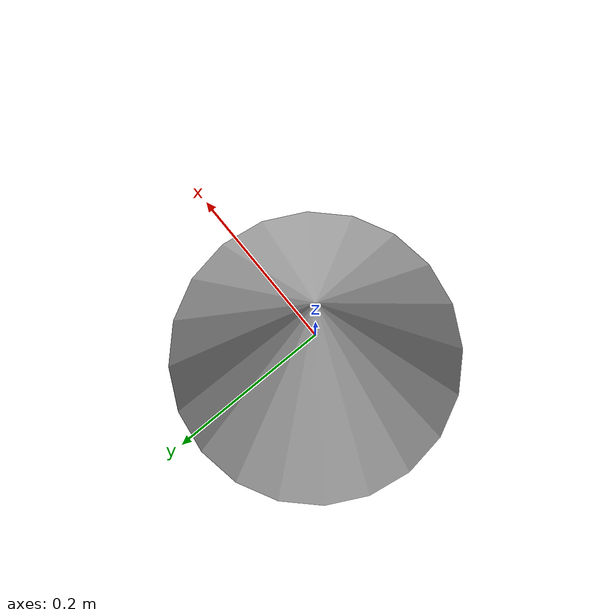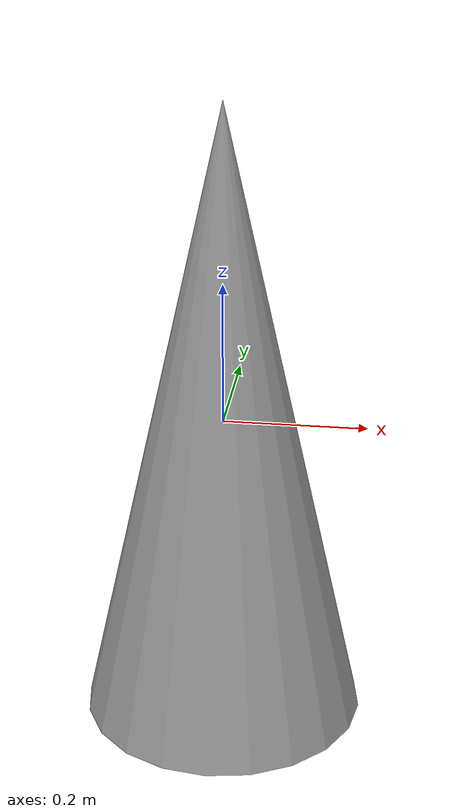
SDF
<?xml version="1.0" ?>
<sdf version="1.9">
  <model name="construction_cone">
    <static>false</static>
    <link name="link">
      <inertial>
        <pose>0 0 0.45 0 0 0</pose>  <!-- z = length/2 -->
        <mass>1</mass>
        <inertia>
          <ixx>1</ixx>
          <iyy>1</iyy>
          <izz>1</izz>
          <ixy>0</ixy>
          <ixz>0</ixz>
          <iyz>0</iyz>
        </inertia>
      </inertial>
      <collision name="collision">
        <geometry>
          <cone>
            <radius>0.20</radius>  <!-- base radius -->
            <length>0.90</length>  <!-- cone height -->
          </cone>
        </geometry>
        <max_contacts>10</max_contacts>
        <surface>
          <contact>
            <ode/>
          </contact>
          <bounce/>
          <friction>
            <torsional>
              <ode/>
            </torsional>
            <ode/>
          </friction>
        </surface>
      </collision>
      <visual name="visual">
        <geometry>
          <cone>
            <radius>0.20</radius>  <!-- base radius -->
            <length>0.90</length>  <!-- cone height -->
          </cone>
        </geometry>
      </visual>
      <self_collide>0</self_collide>
      <enable_wind>0</enable_wind>
      <kinematic>0</kinematic>
    </link>
  </model>
</sdf>
